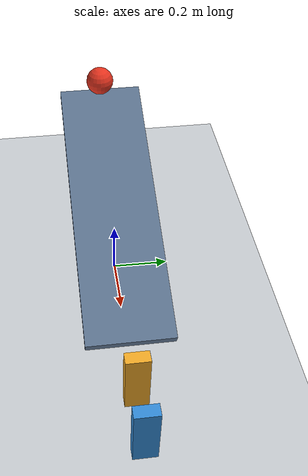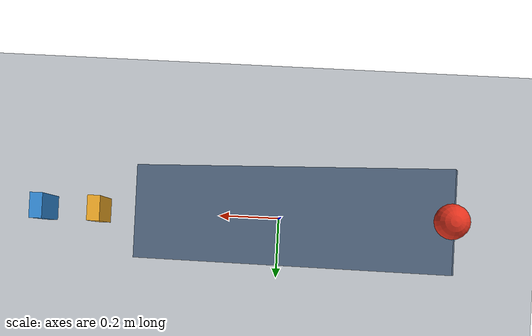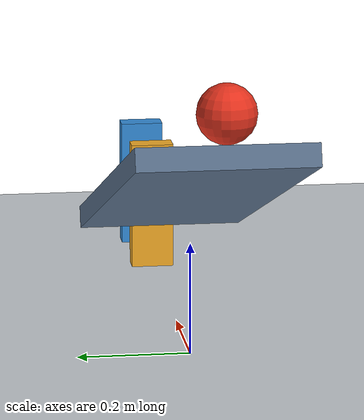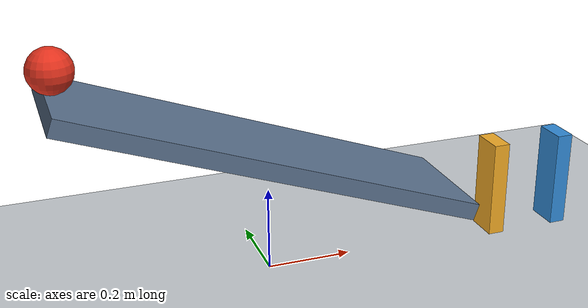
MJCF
<mujoco model="ramp_ball_domino_chain">
  <compiler angle="degree" inertiafromgeom="true"/>
  <option timestep="0.002" gravity="0 0 -9.81" integrator="implicitfast" solver="Newton" iterations="100" cone="elliptic"/>

  <!-- MuJoCo uses compliant contacts: damping ratio 0.690107 approximates restitution 0.05. -->
  <!-- Sliding friction is 0.70. Small torsional and rolling resistance help the ball settle. -->
  <!-- All moving bodies have free joints; there are no hinge or slide joints requiring damping. -->

  <visual>
    <headlight ambient="0.35 0.35 0.35" diffuse="0.75 0.75 0.75" specular="0.2 0.2 0.2"/>
  </visual>

  <worldbody>
    <light name="overhead" pos="0 -1 3" dir="0 0 -1"/>
    <camera name="overview" pos="0.25 -2.5 1.45" xyaxes="1 0 0 0 0.4614 0.8872"/>

    <geom name="floor" type="plane" pos="0 0 0" size="3 2 0.1" friction="0.70 0.005 0.005" condim="6" solref="0.006 0.690107" solimp="0.95 0.99 0.001" rgba="0.78 0.80 0.82 1"/>

    <!-- The upper surface is 1.00 m long and 0.30 m wide, descending toward +x at 20 degrees. -->
    <!-- Its low endpoint is (0.4698463104, 0, 0.15). -->
    <body name="ramp1" pos="0 0 0.3210100717" quat="0.9848077530 0 0.1736481777 0">
      <geom name="ramp1_surface" type="box" pos="0 0 -0.02" size="0.50 0.15 0.02" friction="0.70 0.005 0.005" condim="6" solref="0.006 0.690107" solimp="0.95 0.99 0.001" rgba="0.36 0.45 0.56 1"/>
    </body>

    <!-- Sphere center is one radius above the high endpoint, along the ramp normal. -->
    <body name="ball1" pos="-0.4527453032 0 0.5390047744">
      <freejoint name="ball1_free"/>
      <geom name="ball1_sphere" type="sphere" size="0.05" mass="0.20" friction="0.70 0.005 0.005" condim="6" solref="0.006 0.690107" solimp="0.95 0.99 0.001" rgba="0.90 0.20 0.12 1"/>
    </body>

    <!-- Domino thickness is along x, width along y, and height along z. -->
    <!-- Domino1's upstream face is exactly 0.10 m beyond the ramp's low endpoint. -->
    <body name="domino1" pos="0.5898463104 0 0.12">
      <freejoint name="domino1_free"/>
      <geom name="domino1_box" type="box" size="0.02 0.04 0.12" mass="0.25" friction="0.70 0.005 0.005" condim="6" solref="0.006 0.690107" solimp="0.95 0.99 0.001" rgba="0.95 0.67 0.15 1"/>
    </body>

    <!-- Domino centers are separated by exactly 0.18 m. -->
    <body name="domino2" pos="0.7698463104 0 0.12">
      <freejoint name="domino2_free"/>
      <geom name="domino2_box" type="box" size="0.02 0.04 0.12" mass="0.25" friction="0.70 0.005 0.005" condim="6" solref="0.006 0.690107" solimp="0.95 0.99 0.001" rgba="0.20 0.55 0.85 1"/>
    </body>
  </worldbody>

  <keyframe>
    <!-- Omitted qpos uses the body poses above; all 18 velocity coordinates are zero. -->
    <key name="start" time="0" qvel="0 0 0 0 0 0 0 0 0 0 0 0 0 0 0 0 0 0"/>
  </keyframe>
</mujoco>
